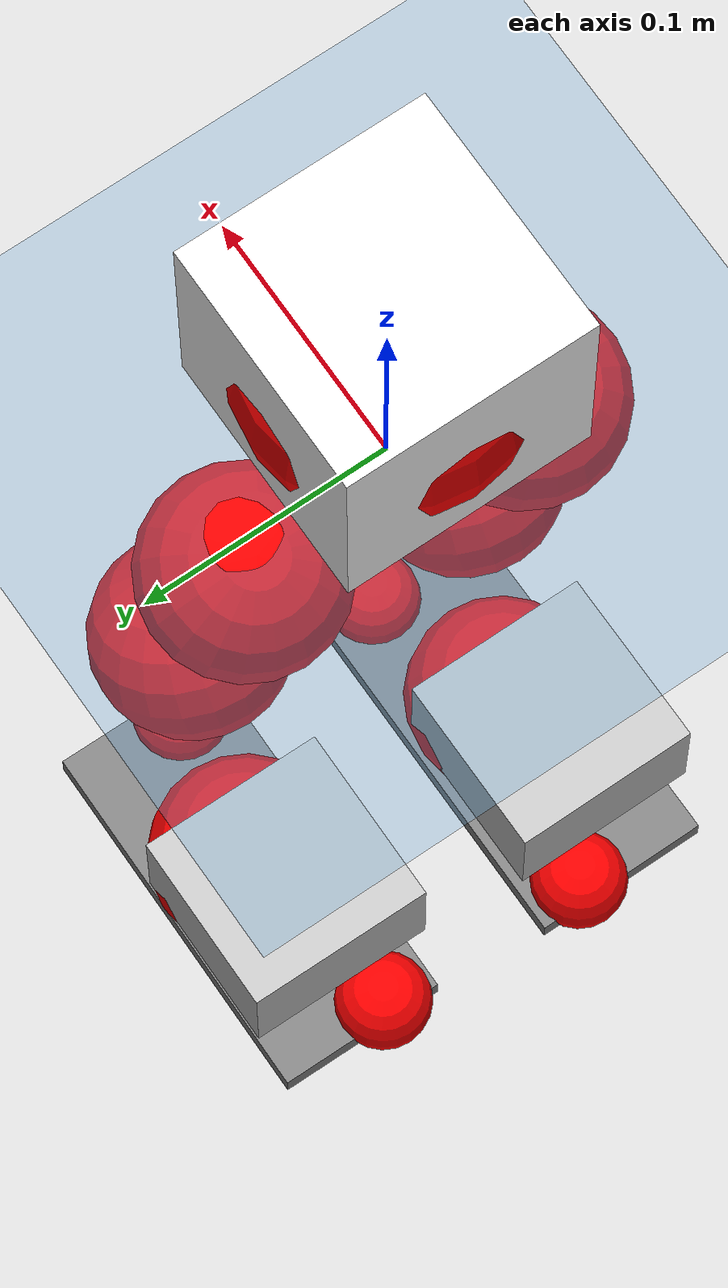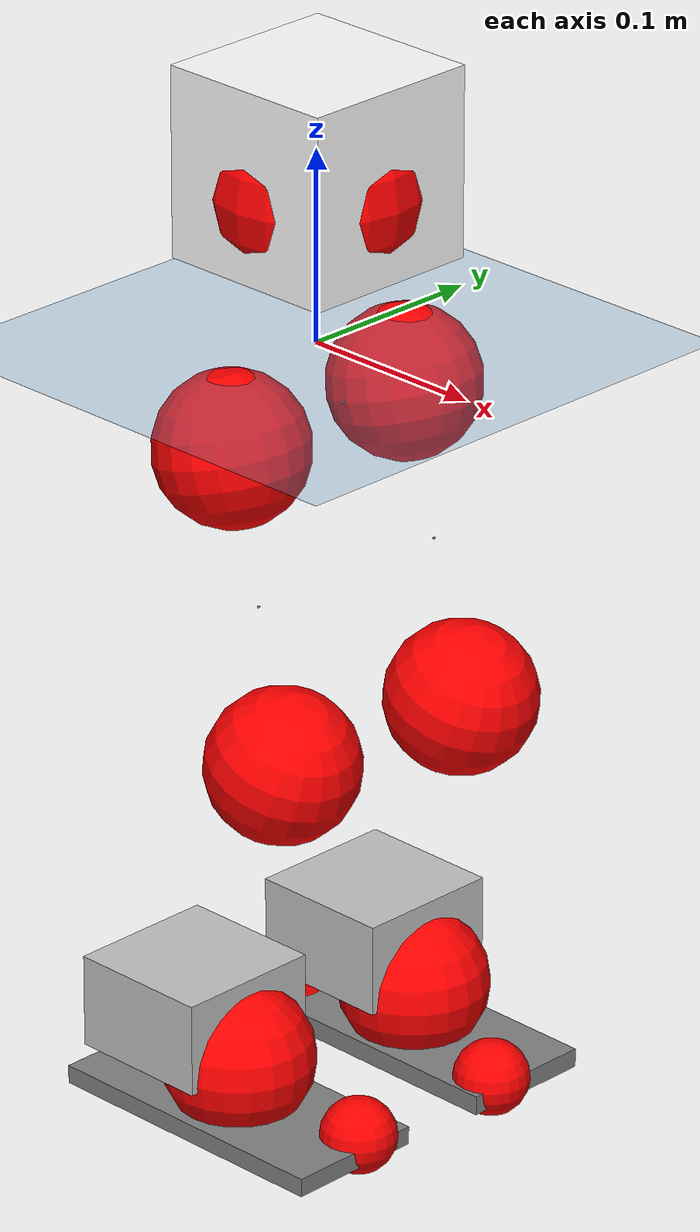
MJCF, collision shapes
<mujoco model="pi_12dof_release_v1">
  <compiler angle="radian" assetdir="assets" balanceinertia="true" inertiafromgeom="false"/>

  <option timestep="0.005" density="1.2" viscosity="2e-05"/>

  <size nkey="1"/>

  <visual>
    <quality shadowsize="8192"/>
    <map shadowclip="0.5"/>
  </visual>

  <default>
    <default class="/">
      <joint armature="0.01" damping="0.01" frictionloss="0.01"/>
      <geom contype="0" conaffinity="0" group="1" solref="-1000 -80"/>
      <site size="0.01 0.005 0.005" group="5"/>
      <general forcelimited="true" biastype="affine" gainprm="20" biasprm="0 -20 -0.5"/>
      <default class="foot">
        <geom size="0.0845 0.036 0.005" type="box" condim="6" group="4" priority="1" friction="0.9 0.2 0.2" solimp="0.015 1 0.005"/>
      </default>
      <default class="reward_collision_sphere">
        <geom group="5" rgba="1 0 0 1"/>
      </default>
    </default>
  </default>

  <asset>
    <texture type="skybox" colorspace="auto" name="//unnamed_texture_0" builtin="gradient" rgb1="0.95 0.95 0.95" rgb2="0.95 0.95 0.95" width="100" height="600"/>
    <texture type="2d" colorspace="auto" name="texplane" builtin="checker" rgb1="0.345 0.575 0.748" rgb2="0.345 0.575 0.748" markrgb="1 1 1" width="512" height="512"/>
    <material name="MatPlane" class="/" texture="texplane" texuniform="true" texrepeat="2 2" specular="0.9"/>
    <mesh name="baselink_1" class="/" file="baselink_1.STL"/>
    <mesh name="r_hip_pitch_link" class="/" file="r_hip_pitch_link.STL"/>
    <mesh name="r_hip_roll_link" class="/" file="r_hip_roll_link.STL"/>
    <mesh name="r_thigh_link" class="/" file="r_thigh_link.STL"/>
    <mesh name="r_calf_link" class="/" file="r_calf_link.STL"/>
    <mesh name="r_ankle_pitch_link" class="/" file="r_ankle_pitch_link.STL"/>
    <mesh name="r_ankle_roll_link" class="/" file="r_ankle_roll_link.STL"/>
    <mesh name="l_hip_pitch_link" class="/" file="l_hip_pitch_link.STL"/>
    <mesh name="l_hip_roll_link" class="/" file="l_hip_roll_link.STL"/>
    <mesh name="l_thigh_link" class="/" file="l_thigh_link.STL"/>
    <mesh name="l_calf_link" class="/" file="l_calf_link.STL"/>
    <mesh name="l_ankle_pitch_link" class="/" file="l_ankle_pitch_link.STL"/>
    <mesh name="l_ankle_roll_link" class="/" file="l_ankle_roll_link.STL"/>
  </asset>

  <worldbody>
    <geom name="floor" class="/" size="100 100 0.125" type="plane" group="0" material="MatPlane"/>
    <light name="toplight_shadow" class="/" pos="0 0 5" dir="0.0990148 0.0990148 -0.990148" type="directional" ambient="0.04 0.04 0.04" diffuse="0.55 0.55 0.55" specular="0.12 0.12 0.12"/>
    <light name="toplight_fill" class="/" pos="0 0 5" dir="0.0990148 0.0990148 -0.990148" type="directional" castshadow="false" ambient="0.04 0.04 0.04" diffuse="0.3 0.3 0.3" specular="0.08 0.08 0.08"/>
    <body name="trunk" pos="0.000268798 0.000201826 0.000721935" quat="1 8.20675e-05 2.86867e-05 7.70741e-06">
      <inertial pos="0.00321718 -0.0024689 0.0469891" quat="0.693874 0.012742 0.00856466 0.719932" mass="2.0328" diaginertia="0.0130359 0.0018296 0.00857535"/>
      <joint name="//unnamed_joint_0" type="free"/>
      <geom name="//unnamed_geom_1" class="/" type="mesh" density="0" rgba="1 1 1 1" mesh="baselink_1"/>
      <geom name="//unnamed_geom_2" class="/" size="0.0492973 0.0492973 0.0492973" pos="0 0 0.0927024" type="box" rgba="1 1 1 1"/>
      <geom name="//unnamed_geom_3" class="reward_collision_sphere" size="0.0542271" pos="0 0 0.0811146"/>
      <site name="imu" class="/" pos="-0.00250572 0.00050284 0.000459332" size="0.00985946"/>
      <camera name="track" class="/" pos="0 -1.46018 0" quat="0.707107 0.707107 0 0" mode="trackcom"/>
      <camera name="ego_camera" class="/" pos="0.0801726 0 0.20858" quat="-0.5 -0.5 0.5 0.5"/>
      <body name="r_hip_pitch_link" pos="-0.000997316 -0.0168697 -0.0382312" quat="0.992177 -0.000177428 -0.124842 0.000249643">
        <inertial pos="0.00119924 -0.0421797 0.000619525" quat="-0.0186849 0.698217 -0.0275759 0.715111" mass="0.353271" diaginertia="0.00015115 2.05935e-05 0.000173699"/>
        <joint name="r_hip_pitch_joint" class="/" pos="0 0 0" axis="-0.00890525 -0.99996 0.000533723" range="-1.75549 1.23518" armature="0.00974595" damping="0.0210799" frictionloss="0.0106439"/>
        <geom name="//unnamed_geom_4" class="/" type="mesh" density="0" rgba="0.75294 0.75294 0.75294 1" mesh="r_hip_pitch_link"/>
        <geom name="//unnamed_geom_5" class="/" size="0.000492973 0.000492973 0.000492973" type="box" rgba="0.75294 0.75294 0.75294 1"/>
        <body name="r_hip_roll_link" pos="0.00073539 -0.0410689 -0.000592969" quat="1 -0.00015554 0.000308092 0.000867142">
          <inertial pos="-0.000798221 0.00162425 -0.0700193" quat="0.705198 -0.0752856 -0.0854875 0.6998" mass="0.36836" diaginertia="0.000459224 5.89987e-05 0.000268132"/>
          <joint name="r_hip_roll_joint" class="/" pos="0 0 0" axis="-0.999992 0.00391391 0.000930302" range="-0.121682 0.504723" armature="0.010121" damping="0.0122349" frictionloss="0.0096169"/>
          <geom name="//unnamed_geom_6" class="/" type="mesh" density="0" rgba="0.75294 0.75294 0.75294 1" mesh="r_hip_roll_link"/>
          <geom name="//unnamed_geom_7" class="/" size="0.000492973 0.000492973 0.000492973" type="box" rgba="0.75294 0.75294 0.75294 1"/>
          <geom name="//unnamed_geom_8" class="reward_collision_sphere" size="0.0394379"/>
          <body name="r_thigh_link" pos="-0.000356132 -0.00109924 -0.0792711" quat="1 0.00027868 -9.71081e-05 0.00013859">
            <inertial pos="-0.000723946 0.000785388 -0.0557967" quat="0.736084 0.676877 0.00413157 0.00086907" mass="0.107399" diaginertia="0.000175081 2.01134e-05 0.000120862"/>
            <joint name="r_thigh_joint" class="/" pos="0 0 0" axis="-0.00260156 0.000497803 -0.999996" range="-0.337962 0.556467" armature="0.0102852" damping="0" frictionloss="0.0107232"/>
            <geom name="//unnamed_geom_9" class="/" type="mesh" density="0" rgba="0.75294 0.75294 0.75294 1" mesh="r_thigh_link"/>
            <geom name="//unnamed_geom_10" class="/" size="0.000492973 0.000492973 0.000492973" type="box" rgba="0.75294 0.75294 0.75294 1"/>
            <body name="r_calf_link" pos="-0.0022649 -0.00146716 -0.0804545" quat="0.947656 -2.14272e-05 0.319294 -1.29919e-05">
              <inertial pos="-0.00044824 -0.00185623 -0.0800015" quat="0.999974 0.00295277 -0.00281164 0.00589856" mass="0.786104" diaginertia="0.00489309 0.000725982 0.000359198"/>
              <joint name="r_calf_joint" class="/" pos="0 0 0" axis="0.00611192 -0.999925 0.0106331" stiffness="0.00204174" range="-1.63335 0.641183" armature="0.00999183" damping="0.0136636" frictionloss="0.0105704"/>
              <geom name="//unnamed_geom_11" class="/" type="mesh" density="0" rgba="0.75294 0.75294 0.75294 1" mesh="r_calf_link"/>
              <geom name="//unnamed_geom_12" class="/" size="0.000492973 0.000492973 0.000492973" type="box" rgba="0.75294 0.75294 0.75294 1"/>
              <geom name="//unnamed_geom_13" class="reward_collision_sphere" size="0.0394379"/>
              <body name="r_ankle_pitch_link" pos="0.00138455 -0.000209864 -0.163846" quat="0.980062 3.66349e-06 -0.198692 2.18376e-05">
                <inertial pos="0.00428116 0.00309697 0.00134208" quat="0.00142091 0.709919 -0.0042063 0.704269" mass="0.167497" diaginertia="0.000430959 4.60856e-05 0.000250703"/>
                <joint name="r_ankle_pitch_joint" class="/" pos="0 0 0" axis="-0.00152566 -0.999997 0.00164813" range="-1.29511 0.470261" armature="0.0102768" damping="0.0120036" frictionloss="0.0104803"/>
                <geom name="//unnamed_geom_14" class="/" type="mesh" density="0" rgba="0.75294 0.75294 0.75294 1" mesh="r_ankle_pitch_link"/>
                <geom name="//unnamed_geom_15" class="/" size="0.0384519 0.0394379 0.0246487" type="box" rgba="0.75294 0.75294 0.75294 1"/>
                <body name="r_ankle_roll_link" pos="0.0824858 0.00201433 0.00155959" quat="1 -3.8619e-05 -1.09143e-05 -1.90416e-05">
                  <inertial pos="-0.0251209 -0.000197787 -0.0164689" quat="0.563697 0.430576 0.431247 0.557563" mass="0.509118" diaginertia="0.0016384 0.000219278 0.000610498"/>
                  <joint name="r_ankle_roll_joint" class="/" pos="0 0 0" axis="-0.99995 -0.00977719 -0.00229325" range="-0.110307 0.164313" armature="0.00964113" damping="0.00606184" frictionloss="0.00949097"/>
                  <geom name="//unnamed_geom_16" class="/" type="mesh" density="0" rgba="0.75294 0.75294 0.75294 1" mesh="r_ankle_roll_link"/>
                  <geom name="//unnamed_geom_17" class="/" type="mesh" rgba="0.75294 0.75294 0.75294 1" mesh="r_ankle_roll_link"/>
                  <geom name="right_foot" class="foot" size="0.0826738 0.0375544 0.00486958" pos="-0.0545174 0 -0.0509863"/>
                  <geom name="//unnamed_geom_19" class="reward_collision_sphere" size="0.0394379" pos="-0.0534484 0 -0.0231756"/>
                  <geom name="//unnamed_geom_20" class="reward_collision_sphere" size="0.0197189" pos="0.0160345 0.0146018 -0.0463512"/>
                  <geom name="//unnamed_geom_21" class="reward_collision_sphere" size="0.0197189" pos="-0.128276 0.0146018 -0.0463512"/>
                  <site name="right_foot" class="foot" pos="-0.0545174 0 -0.0509863" size="0.00985946"/>
                </body>
              </body>
            </body>
          </body>
        </body>
      </body>
      <body name="l_hip_pitch_link" pos="0.00137137 0.0161032 -0.0368325" quat="0.992199 -3.29535e-05 -0.124668 -4.02128e-05">
        <inertial pos="0.0010363 0.0396366 -0.00067285" quat="-0.0393632 0.705211 0.0296514 0.707283" mass="0.368324" diaginertia="0.000181056 2.23218e-05 0.000211172"/>
        <joint name="l_hip_pitch_joint" class="/" pos="0 0 0" axis="0.0029016 0.999996 0.000371273" range="-1.23431 1.77477" armature="0.00976975" damping="0.0144594" frictionloss="0.00987064"/>
        <geom name="//unnamed_geom_22" class="/" type="mesh" density="0" rgba="0.75294 0.75294 0.75294 1" mesh="l_hip_pitch_link"/>
        <geom name="//unnamed_geom_23" class="/" size="0.000492973 0.000492973 0.000492973" type="box" rgba="0.75294 0.75294 0.75294 1"/>
        <body name="l_hip_roll_link" pos="0.000246763 0.0420367 -0.00130698" quat="1 -7.33404e-05 -0.00029778 -0.000775432">
          <inertial pos="-0.00160934 0.00206032 -0.07134" quat="0.698395 -0.0739165 -0.0785672 0.707537" mass="0.36384" diaginertia="0.000469676 5.71045e-05 0.000272709"/>
          <joint name="l_hip_roll_joint" class="/" pos="0 0 0" axis="-0.999998 -0.00171784 0.00118082" range="-0.494896 0.103568" armature="0.0108164" damping="0.00512844" frictionloss="0.0102182"/>
          <geom name="//unnamed_geom_24" class="/" type="mesh" density="0" rgba="0.75294 0.75294 0.75294 1" mesh="l_hip_roll_link"/>
          <geom name="//unnamed_geom_25" class="/" size="0.000492973 0.000492973 0.000492973" type="box" rgba="0.75294 0.75294 0.75294 1"/>
          <geom name="//unnamed_geom_26" class="reward_collision_sphere" size="0.0394379"/>
          <body name="l_thigh_link" pos="0.00130223 -0.000424872 -0.0802887" quat="1 6.46515e-05 -0.000154177 -0.000353682">
            <inertial pos="-6.51196e-05 -0.000748742 -0.055713" quat="0.674932 0.737879 -2.58262e-05 0.000885297" mass="0.109459" diaginertia="0.000175048 1.96777e-05 0.000120825"/>
            <joint name="l_thigh_joint" class="/" pos="0 0 0" axis="0.000145903 0.000245416 -1" range="-0.614931 0.293108" armature="0.0102457" damping="0" frictionloss="0.00946159"/>
            <geom name="//unnamed_geom_27" class="/" type="mesh" density="0" rgba="0.75294 0.75294 0.75294 1" mesh="l_thigh_link"/>
            <geom name="//unnamed_geom_28" class="/" size="0.000492973 0.000492973 0.000492973" type="box" rgba="0.75294 0.75294 0.75294 1"/>
            <body name="l_calf_link" pos="-0.00194303 0.000922247 -0.0825034" quat="0.947541 0.000567585 0.319634 -0.000864544">
              <inertial pos="0.000876444 0.0032898 -0.0802765" quat="0.999984 0.00351334 -0.000327724 0.00447006" mass="0.789788" diaginertia="0.00497107 0.000727562 0.000378774"/>
              <joint name="l_calf_joint" class="/" pos="0 0 0" axis="0.00238671 0.999997 0.000472182" range="-0.630185 1.66795" armature="0.0103961" damping="0.00640229" frictionloss="0.00958095"/>
              <geom name="//unnamed_geom_29" class="/" type="mesh" density="0" rgba="0.75294 0.75294 0.75294 1" mesh="l_calf_link"/>
              <geom name="//unnamed_geom_30" class="/" size="0.000492973 0.000492973 0.000492973" type="box" rgba="0.75294 0.75294 0.75294 1"/>
              <geom name="//unnamed_geom_31" class="reward_collision_sphere" size="0.0394379"/>
              <body name="l_ankle_pitch_link" pos="0.000478939 0.00164389 -0.161002" quat="0.980114 0.000143139 -0.198433 -0.000400054">
                <inertial pos="0.00525366 -0.0010473 -0.000502912" quat="-0.00424 0.706904 0.00300269 0.70729" mass="0.166858" diaginertia="0.000425716 4.62692e-05 0.000250657"/>
                <joint name="l_ankle_pitch_joint" class="/" pos="0 0 0" axis="-0.000716834 0.999997 0.00217789" stiffness="0.00588643" range="-0.514754 1.30826" armature="0.00925852" damping="0.012261" frictionloss="0.0100846"/>
                <geom name="//unnamed_geom_32" class="/" type="mesh" density="0" rgba="0.75294 0.75294 0.75294 1" mesh="l_ankle_pitch_link"/>
                <geom name="//unnamed_geom_33" class="/" size="0.0384519 0.0394379 0.0246487" type="box" rgba="0.75294 0.75294 0.75294 1"/>
                <body name="l_ankle_roll_link" pos="0.0805688 0.00123818 -0.000712533" quat="1 -0.000147023 -5.20614e-05 -1.38482e-05">
                  <inertial pos="-0.0254442 -3.54433e-05 -0.0163667" quat="0.559265 0.431001 0.43449 0.559177" mass="0.494893" diaginertia="0.00156506 0.000211049 0.000587151"/>
                  <joint name="l_ankle_roll_joint" class="/" pos="0 0 0" axis="-1 0.00016765 0.000112985" range="-0.116413 0.152685" armature="0.00964799" damping="0" frictionloss="0.0103209"/>
                  <geom name="//unnamed_geom_34" class="/" type="mesh" density="0" rgba="0.75294 0.75294 0.75294 1" mesh="l_ankle_roll_link"/>
                  <geom name="//unnamed_geom_35" class="/" type="mesh" rgba="0.75294 0.75294 0.75294 1" mesh="l_ankle_roll_link"/>
                  <geom name="left_foot" class="foot" size="0.0806469 0.0358248 0.0050772" pos="-0.0545174 0 -0.0509863"/>
                  <geom name="//unnamed_geom_37" class="reward_collision_sphere" size="0.0394379" pos="-0.0534484 0 -0.0231756"/>
                  <geom name="//unnamed_geom_38" class="reward_collision_sphere" size="0.0197189" pos="0.0160345 -0.0146018 -0.0463512"/>
                  <geom name="//unnamed_geom_39" class="reward_collision_sphere" size="0.0197189" pos="-0.128276 -0.0146018 -0.0463512"/>
                  <site name="left_foot" class="foot" pos="-0.0545174 0 -0.0509863" size="0.00985946"/>
                </body>
              </body>
            </body>
          </body>
        </body>
      </body>
    </body>
  </worldbody>

  <contact>
    <pair class="/" geom1="floor" geom2="right_foot" name="//unnamed_contact_1"/>
    <pair class="/" geom1="floor" geom2="left_foot" name="//unnamed_contact_0"/>
  </contact>

  <actuator>
    <general name="r_hip_pitch_joint" class="/" joint="r_hip_pitch_joint" forcerange="-21.4938 21.4938" gainprm="20.2374" biasprm="0 -20.2374 -0.474498"/>
    <general name="r_hip_roll_joint" class="/" joint="r_hip_roll_joint" forcerange="-22.2751 22.2751" gainprm="20.2374" biasprm="0 -20.2374 -0.474498"/>
    <general name="r_thigh_joint" class="/" joint="r_thigh_joint" forcerange="-20.7112 20.7112" gainprm="20.2374" biasprm="0 -20.2374 -0.474498"/>
    <general name="r_calf_joint" class="/" joint="r_calf_joint" forcerange="-20.8515 20.8515" gainprm="20.2374" biasprm="0 -20.2374 -0.474498"/>
    <general name="r_ankle_pitch_joint" class="/" joint="r_ankle_pitch_joint" forcerange="-20.6 20.6" gainprm="20.2374" biasprm="0 -20.2374 -0.474498"/>
    <general name="r_ankle_roll_joint" class="/" joint="r_ankle_roll_joint" forcerange="-20.9655 20.9655" gainprm="20.2374" biasprm="0 -20.2374 -0.474498"/>
    <general name="l_hip_pitch_joint" class="/" joint="l_hip_pitch_joint" forcerange="-19.9624 19.9624" gainprm="20.2374" biasprm="0 -20.2374 -0.474498"/>
    <general name="l_hip_roll_joint" class="/" joint="l_hip_roll_joint" forcerange="-20.5427 20.5427" gainprm="20.2374" biasprm="0 -20.2374 -0.474498"/>
    <general name="l_thigh_joint" class="/" joint="l_thigh_joint" forcerange="-20.623 20.623" gainprm="20.2374" biasprm="0 -20.2374 -0.474498"/>
    <general name="l_calf_joint" class="/" joint="l_calf_joint" forcerange="-21.3883 21.3883" gainprm="20.2374" biasprm="0 -20.2374 -0.474498"/>
    <general name="l_ankle_pitch_joint" class="/" joint="l_ankle_pitch_joint" forcerange="-20.8553 20.8553" gainprm="20.2374" biasprm="0 -20.2374 -0.474498"/>
    <general name="l_ankle_roll_joint" class="/" joint="l_ankle_roll_joint" forcerange="-20.5255 20.5255" gainprm="20.2374" biasprm="0 -20.2374 -0.474498"/>
  </actuator>

  <sensor>
    <gyro site="imu" name="imu_angular_velocity"/>
    <velocimeter site="imu" name="imu_linear_velocity"/>
    <framelinvel objtype="site" objname="left_foot" name="left_foot_global_linear_velocity"/>
    <framelinvel objtype="site" objname="right_foot" name="right_foot_global_linear_velocity"/>
  </sensor>

  <keyframe>
    <key name="home" qpos="0 0 0.291 1 0 0 0 0.4 0 0 -0.8 0.4 0 -0.4 0 0 0.8 -0.4 0"/>
  </keyframe>
</mujoco>
